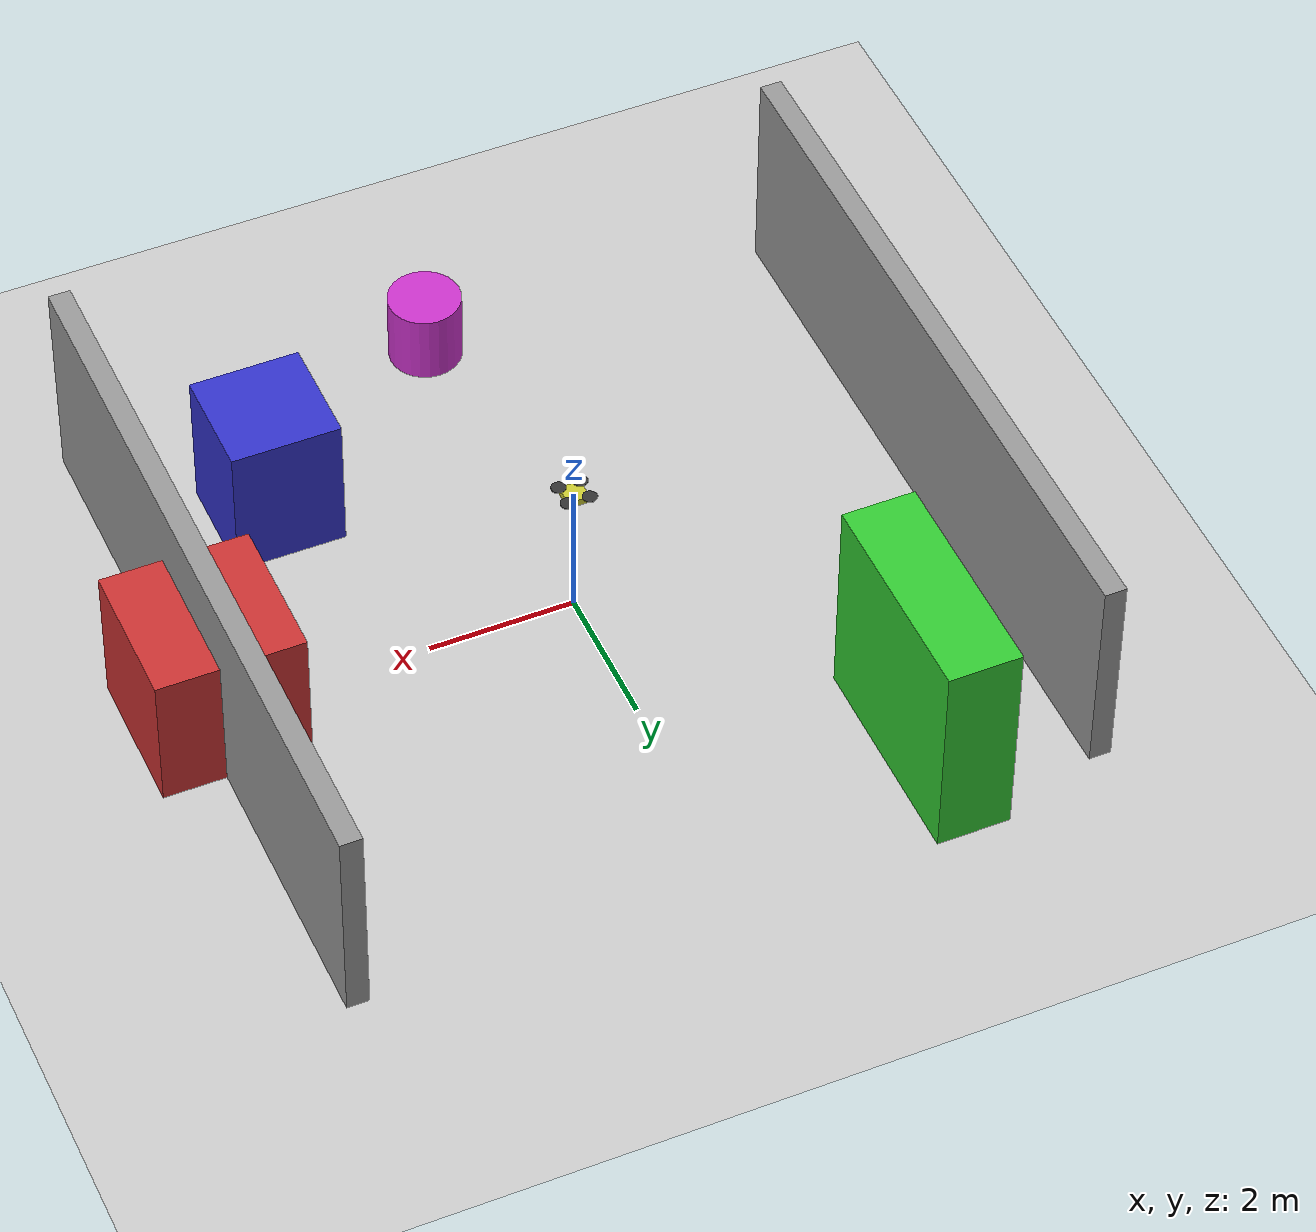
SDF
<?xml version="1.0"?>
<sdf version="1.6">
  <world name="drone_world">
    <physics name="default_physics" default="0" type="ode">
      <gravity>0 0 -9.8066</gravity>
      <ode>
        <solver>
          <type>quick</type>
          <iters>10</iters>
          <sor>1.3</sor>
        </solver>
        <constraints>
          <cfm>0</cfm>
          <erp>0.2</erp>
          <contact_max_correcting_vel>100</contact_max_correcting_vel>
          <contact_surface_layer>0.001</contact_surface_layer>
        </constraints>
      </ode>
      <max_step_size>0.004</max_step_size>
      <real_time_factor>1</real_time_factor>
      <real_time_update_rate>250</real_time_update_rate>
    </physics>

    <scene>
      <ambient>0.4 0.4 0.4 1</ambient>
      <background>0.7 0.7 0.7 1</background>
      <shadows>true</shadows>
    </scene>

    <light name="sun" type="directional">
      <cast_shadows>true</cast_shadows>
      <pose>0 0 10 0 0 0</pose>
      <diffuse>0.8 0.8 0.8 1</diffuse>
      <specular>0.2 0.2 0.2 1</specular>
      <attenuation>
        <range>1000</range>
        <constant>0.9</constant>
        <linear>0.01</linear>
        <quadratic>0.001</quadratic>
      </attenuation>
      <direction>-0.5 0.1 -0.9</direction>
    </light>

    <include>
      <uri>model://ground_plane</uri>
    </include>

    <!-- Obstacles for mapping -->
    <include>
      <uri>model://box_1</uri>
      <pose>5 0 1 0 0 0</pose>
    </include>

    <include>
      <uri>model://box_2</uri>
      <pose>-3 4 1.5 0 0 0</pose>
    </include>

    <include>
      <uri>model://box_3</uri>
      <pose>3 -3 1 0 0 0</pose>
    </include>

    <include>
      <uri>model://cylinder_1</uri>
      <pose>0 -5 0.5 0 0 0</pose>
    </include>

    <include>
      <uri>model://wall_1</uri>
      <pose>-5 0 1.5 0 0 0</pose>
    </include>

    <include>
      <uri>model://wall_2</uri>
      <pose>5 0 1.5 0 0 0</pose>
    </include>

    <!-- Include the quadrotor model -->
    <include>
      <uri>model://quadrotor</uri>
      <pose>0 0 2 0 0 0</pose>
    </include>

    <!-- Gazebo ROS plugins -->
    <plugin name="gazebo_ros_state" filename="libgazebo_ros_state.so">
      <ros>
        <namespace>/drone</namespace>
      </ros>
      <update_rate>30.0</update_rate>
    </plugin>

    <plugin name="gazebo_ros_factory" filename="libgazebo_ros_factory.so">
      <ros>
        <namespace>/</namespace>
      </ros>
    </plugin>
  </world>
</sdf>

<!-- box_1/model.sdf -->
<sdf version="1.7">
  <model name="box_1">
    <pose>5 0 1 0 0 0</pose>
    <link name="link">
      <collision name="collision">
        <geometry>
          <box>
            <size>2 2 2</size>
          </box>
        </geometry>
      </collision>
      <visual name="visual">
        <geometry>
          <box>
            <size>2 2 2</size>
          </box>
        </geometry>
        <material>
          <ambient>0.8 0.2 0.2 1</ambient>
          <diffuse>0.8 0.2 0.2 1</diffuse>
        </material>
      </visual>
    </link>
  </model>
</sdf>

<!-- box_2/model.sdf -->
<sdf version="1.7">
  <model name="box_2">
    <pose>-3 4 1.5 0 0 0</pose>
    <link name="link">
      <collision name="collision">
        <geometry>
          <box>
            <size>1 3 3</size>
          </box>
        </geometry>
      </collision>
      <visual name="visual">
        <geometry>
          <box>
            <size>1 3 3</size>
          </box>
        </geometry>
        <material>
          <ambient>0.2 0.8 0.2 1</ambient>
          <diffuse>0.2 0.8 0.2 1</diffuse>
        </material>
      </visual>
    </link>
  </model>
</sdf>

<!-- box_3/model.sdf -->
<sdf version="1.7">
  <model name="box_3">
    <pose>3 -3 1 0 0 0</pose>
    <link name="link">
      <collision name="collision">
        <geometry>
          <box>
            <size>1.5 1.5 2</size>
          </box>
        </geometry>
      </collision>
      <visual name="visual">
        <geometry>
          <box>
            <size>1.5 1.5 2</size>
          </box>
        </geometry>
        <material>
          <ambient>0.2 0.2 0.8 1</ambient>
          <diffuse>0.2 0.2 0.8 1</diffuse>
        </material>
      </visual>
    </link>
  </model>
</sdf>

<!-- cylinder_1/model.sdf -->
<sdf version="1.7">
  <model name="cylinder_1">
    <pose>0 -5 0.5 0 0 0</pose>
    <link name="link">
      <collision name="collision">
        <geometry>
          <cylinder>
            <radius>0.5</radius>
            <length>1</length>
          </cylinder>
        </geometry>
      </collision>
      <visual name="visual">
        <geometry>
          <cylinder>
            <radius>0.5</radius>
            <length>1</length>
          </cylinder>
        </geometry>
        <material>
          <ambient>0.8 0.2 0.8 1</ambient>
          <diffuse>0.8 0.2 0.8 1</diffuse>
        </material>
      </visual>
    </link>
  </model>
</sdf>

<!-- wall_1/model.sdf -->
<sdf version="1.7">
  <model name="wall_1">
    <pose>-5 0 1.5 0 0 0</pose>
    <link name="link">
      <collision name="collision">
        <geometry>
          <box>
            <size>0.3 10 3</size>
          </box>
        </geometry>
      </collision>
      <visual name="visual">
        <geometry>
          <box>
            <size>0.3 10 3</size>
          </box>
        </geometry>
        <material>
          <ambient>0.6 0.6 0.6 1</ambient>
          <diffuse>0.6 0.6 0.6 1</diffuse>
        </material>
      </visual>
    </link>
  </model>
</sdf>

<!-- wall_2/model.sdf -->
<sdf version="1.7">
  <model name="wall_2">
    <pose>5 0 1.5 0 0 0</pose>
    <link name="link">
      <collision name="collision">
        <geometry>
          <box>
            <size>0.3 10 3</size>
          </box>
        </geometry>
      </collision>
      <visual name="visual">
        <geometry>
          <box>
            <size>0.3 10 3</size>
          </box>
        </geometry>
        <material>
          <ambient>0.6 0.6 0.6 1</ambient>
          <diffuse>0.6 0.6 0.6 1</diffuse>
        </material>
      </visual>
    </link>
  </model>
</sdf>

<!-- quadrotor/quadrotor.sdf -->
<sdf version="1.7">
  <model name="quadrotor">
    <pose>0 0 2 0 0 0</pose>

    <link name="base_link">
      <inertial>
        <mass>1.5</mass>
        <inertia>
          <ixx>0.0115</ixx>
          <ixy>0</ixy>
          <ixz>0</ixz>
          <iyy>0.0115</iyy>
          <iyz>0</iyz>
          <izz>0.0218</izz>
        </inertia>
      </inertial>

      <collision name="collision">
        <geometry>
          <box>
            <size>0.3 0.3 0.1</size>
          </box>
        </geometry>
        <surface>
          <contact>
            <ode>
              <max_vel>0.1</max_vel>
              <min_depth>0.001</min_depth>
            </ode>
          </contact>
        </surface>
      </collision>

      <visual name="visual">
        <geometry>
          <box>
            <size>0.3 0.3 0.1</size>
          </box>
        </geometry>
        <material>
          <ambient>0.8 0.8 0.2 1</ambient>
          <diffuse>0.8 0.8 0.2 1</diffuse>
        </material>
      </visual>
    </link>

    <!-- Camera link -->
    <link name="camera_link">
      <pose>0.15 0 0 0 0 0</pose>
      <inertial>
        <mass>0.01</mass>
        <inertia>
          <ixx>1e-6</ixx>
          <ixy>0</ixy>
          <ixz>0</ixz>
          <iyy>1e-6</iyy>
          <iyz>0</iyz>
          <izz>1e-6</izz>
        </inertia>
      </inertial>

      <sensor name="camera" type="depth">
        <camera>
          <horizontal_fov>1.047</horizontal_fov>
          <image>
            <width>640</width>
            <height>480</height>
            <format>R8G8B8</format>
          </image>
          <clip>
            <near>0.1</near>
            <far>10.0</far>
          </clip>
        </camera>
        <always_on>true</always_on>
        <update_rate>30</update_rate>
        <visualize>true</visualize>
      </sensor>
    </link>

    <!-- LiDAR link -->
    <link name="lidar_link">
      <pose>0 0 0.1 0 0 0</pose>
      <inertial>
        <mass>0.05</mass>
        <inertia>
          <ixx>1e-5</ixx>
          <ixy>0</ixy>
          <ixz>0</ixz>
          <iyy>1e-5</iyy>
          <iyz>0</iyz>
          <izz>1e-5</izz>
        </inertia>
      </inertial>

      <sensor name="lidar" type="ray">
        <ray>
          <scan>
            <horizontal>
              <samples>360</samples>
              <resolution>1</resolution>
              <min_angle>-3.14159</min_angle>
              <max_angle>3.14159</max_angle>
            </horizontal>
          </scan>
          <range>
            <min>0.1</min>
            <max>10.0</max>
            <resolution>0.01</resolution>
          </range>
        </ray>
        <plugin name="lidar_plugin" filename="libgazebo_ros_ray_sensor.so">
          <ros>
            <namespace>/drone</namespace>
            <remapping>~/out:=lidar/scan</remapping>
          </ros>
          <output_type>sensor_msgs/LaserScan</output_type>
          <frame_name>lidar_link</frame_name>
        </plugin>
      </sensor>
    </link>

    <!-- IMU link -->
    <link name="imu_link">
      <pose>0 0 0 0 0 0</pose>
      <inertial>
        <mass>0.01</mass>
        <inertia>
          <ixx>1e-6</ixx>
          <ixy>0</ixy>
          <ixz>0</ixz>
          <iyy>1e-6</iyy>
          <iyz>0</iyz>
          <izz>1e-6</izz>
        </inertia>
      </inertial>

      <sensor name="imu" type="imu">
        <imu>
          <angular_velocity>
            <x>
              <noise type="gaussian">
                <mean>0</mean>
                <stddev>2e-4</stddev>
              </noise>
            </x>
            <y>
              <noise type="gaussian">
                <mean>0</mean>
                <stddev>2e-4</stddev>
              </noise>
            </y>
            <z>
              <noise type="gaussian">
                <mean>0</mean>
                <stddev>2e-4</stddev>
              </noise>
            </z>
          </angular_velocity>
          <linear_acceleration>
            <x>
              <noise type="gaussian">
                <mean>0</mean>
                <stddev>1.7e-2</stddev>
              </noise>
            </x>
            <y>
              <noise type="gaussian">
                <mean>0</mean>
                <stddev>1.7e-2</stddev>
              </noise>
            </y>
            <z>
              <noise type="gaussian">
                <mean>0</mean>
                <stddev>1.7e-2</stddev>
              </noise>
            </z>
          </linear_acceleration>
        </imu>
        <always_on>true</always_on>
        <update_rate>100</update_rate>
        <plugin name="imu_plugin" filename="libgazebo_ros_imu.so">
          <ros>
            <namespace>/drone</namespace>
            <remapping>~/out:=imu/data</remapping>
          </ros>
          <frame_name>imu_link</frame_name>
        </plugin>
      </sensor>
    </link>

    <!-- Joints -->
    <joint name="camera_joint" type="fixed">
      <parent>base_link</parent>
      <child>camera_link</child>
    </joint>

    <joint name="lidar_joint" type="fixed">
      <parent>base_link</parent>
      <child>lidar_link</child>
    </joint>

    <joint name="imu_joint" type="fixed">
      <parent>base_link</parent>
      <child>imu_link</child>
    </joint>

    <!-- Propeller links -->
    <link name="front_left_prop">
      <pose>0.15 0.15 0.05 0 0 0</pose>
      <inertial>
        <mass>0.005</mass>
        <inertia>
          <ixx>1e-6</ixx>
          <ixy>0</ixy>
          <ixz>0</ixz>
          <iyy>1e-6</iyy>
          <iyz>0</iyz>
          <izz>1e-6</izz>
        </inertia>
      </inertial>
      <visual name="visual">
        <geometry>
          <cylinder>
            <radius>0.1</radius>
            <length>0.01</length>
          </cylinder>
        </geometry>
        <material>
          <ambient>0.2 0.2 0.2 1</ambient>
          <diffuse>0.2 0.2 0.2 1</diffuse>
        </material>
      </visual>
    </link>

    <link name="front_right_prop">
      <pose>0.15 -0.15 0.05 0 0 0</pose>
      <inertial>
        <mass>0.005</mass>
        <inertia>
          <ixx>1e-6</ixx>
          <ixy>0</ixy>
          <ixz>0</ixz>
          <iyy>1e-6</iyy>
          <iyz>0</iyz>
          <izz>1e-6</izz>
        </inertia>
      </inertial>
      <visual name="visual">
        <geometry>
          <cylinder>
            <radius>0.1</radius>
            <length>0.01</length>
          </cylinder>
        </geometry>
        <material>
          <ambient>0.2 0.2 0.2 1</ambient>
          <diffuse>0.2 0.2 0.2 1</diffuse>
        </material>
      </visual>
    </link>

    <link name="rear_left_prop">
      <pose>-0.15 0.15 0.05 0 0 0</pose>
      <inertial>
        <mass>0.005</mass>
        <inertia>
          <ixx>1e-6</ixx>
          <ixy>0</ixy>
          <ixz>0</ixz>
          <iyy>1e-6</iyy>
          <iyz>0</iyz>
          <izz>1e-6</izz>
        </inertia>
      </inertial>
      <visual name="visual">
        <geometry>
          <cylinder>
            <radius>0.1</radius>
            <length>0.01</length>
          </cylinder>
        </geometry>
        <material>
          <ambient>0.2 0.2 0.2 1</ambient>
          <diffuse>0.2 0.2 0.2 1</diffuse>
        </material>
      </visual>
    </link>

    <link name="rear_right_prop">
      <pose>-0.15 -0.15 0.05 0 0 0</pose>
      <inertial>
        <mass>0.005</mass>
        <inertia>
          <ixx>1e-6</ixx>
          <ixy>0</ixy>
          <ixz>0</ixz>
          <iyy>1e-6</iyy>
          <iyz>0</iyz>
          <izz>1e-6</izz>
        </inertia>
      </inertial>
      <visual name="visual">
        <geometry>
          <cylinder>
            <radius>0.1</radius>
            <length>0.01</length>
          </cylinder>
        </geometry>
        <material>
          <ambient>0.2 0.2 0.2 1</ambient>
          <diffuse>0.2 0.2 0.2 1</diffuse>
        </material>
      </visual>
    </link>

    <!-- Propeller joints -->
    <joint name="front_left_prop_joint" type="revolute">
      <parent>base_link</parent>
      <child>front_left_prop</child>
      <axis>
        <xyz>0 0 1</xyz>
      </axis>
    </joint>

    <joint name="front_right_prop_joint" type="revolute">
      <parent>base_link</parent>
      <child>front_right_prop</child>
      <axis>
        <xyz>0 0 1</xyz>
      </axis>
    </joint>

    <joint name="rear_left_prop_joint" type="revolute">
      <parent>base_link</parent>
      <child>rear_left_prop</child>
      <axis>
        <xyz>0 0 1</xyz>
      </axis>
    </joint>

    <joint name="rear_right_prop_joint" type="revolute">
      <parent>base_link</parent>
      <child>rear_right_prop</child>
      <axis>
        <xyz>0 0 1</xyz>
      </axis>
    </joint>

    <!-- Gazebo plugins -->
    <plugin name="quadrotor_controller" filename="libgazebo_ros_force.so">
      <ros>
        <namespace>/drone</namespace>
      </ros>
      <body_name>base_link</body_name>
      <force_frame_name>base_link</force_frame_name>
      <link_name>base_link</link_name>
    </plugin>

    <plugin name="odometry_plugin" filename="libgazebo_ros_p3d.so">
      <ros>
        <namespace>/drone</namespace>
        <remapping>~/odom:=odom</remapping>
      </ros>
      <update_rate>50</update_rate>
      <body_name>base_link</body_name>
      <frame_name>odom</frame_name>
    </plugin>

    <plugin name="joint_state_publisher" filename="libgazebo_ros_joint_state_publisher.so">
      <ros>
        <namespace>/drone</namespace>
        <remapping>~/out:=joint_states</remapping>
      </ros>
      <update_rate>50</update_rate>
      <joint_name>front_left_prop_joint</joint_name>
      <joint_name>front_right_prop_joint</joint_name>
      <joint_name>rear_left_prop_joint</joint_name>
      <joint_name>rear_right_prop_joint</joint_name>
    </plugin>
  </model>
</sdf>
